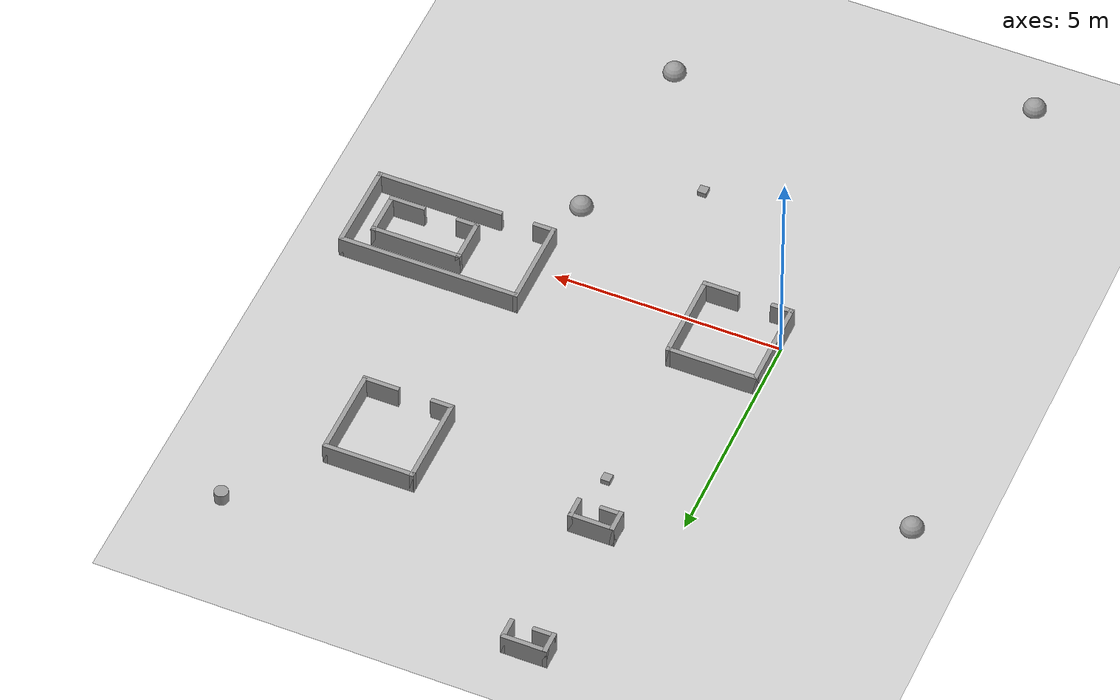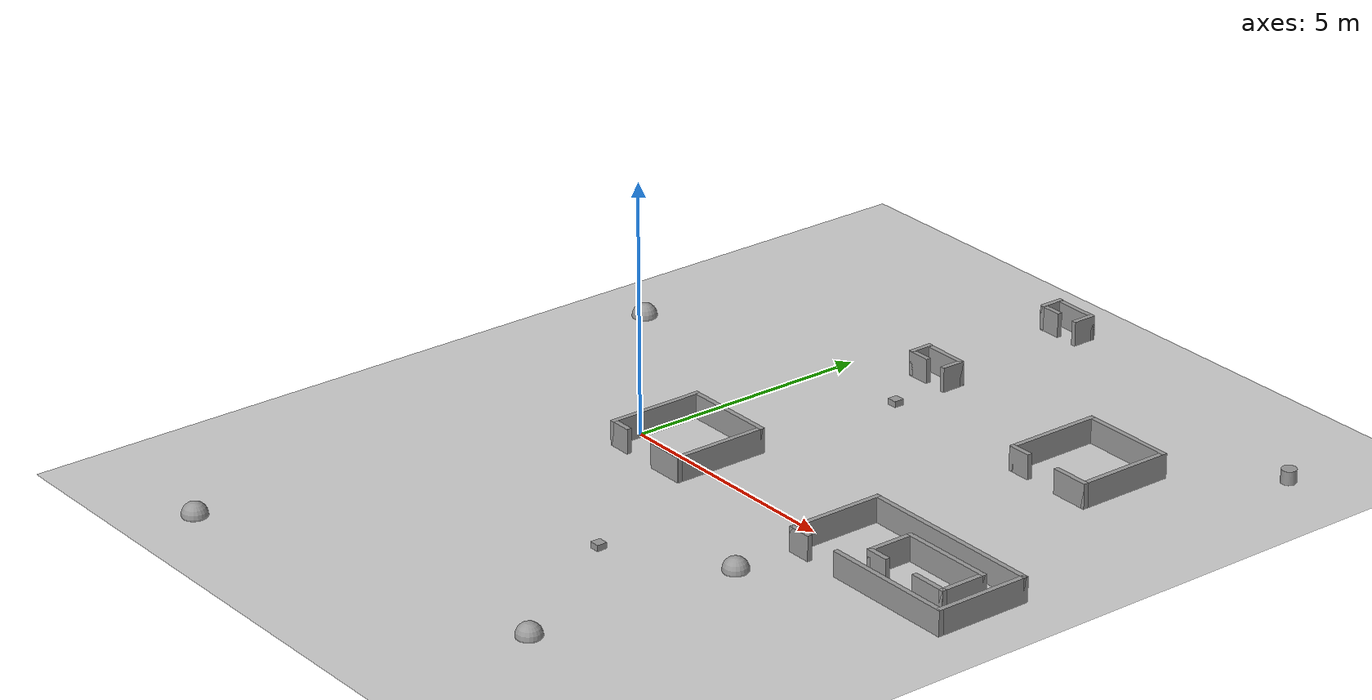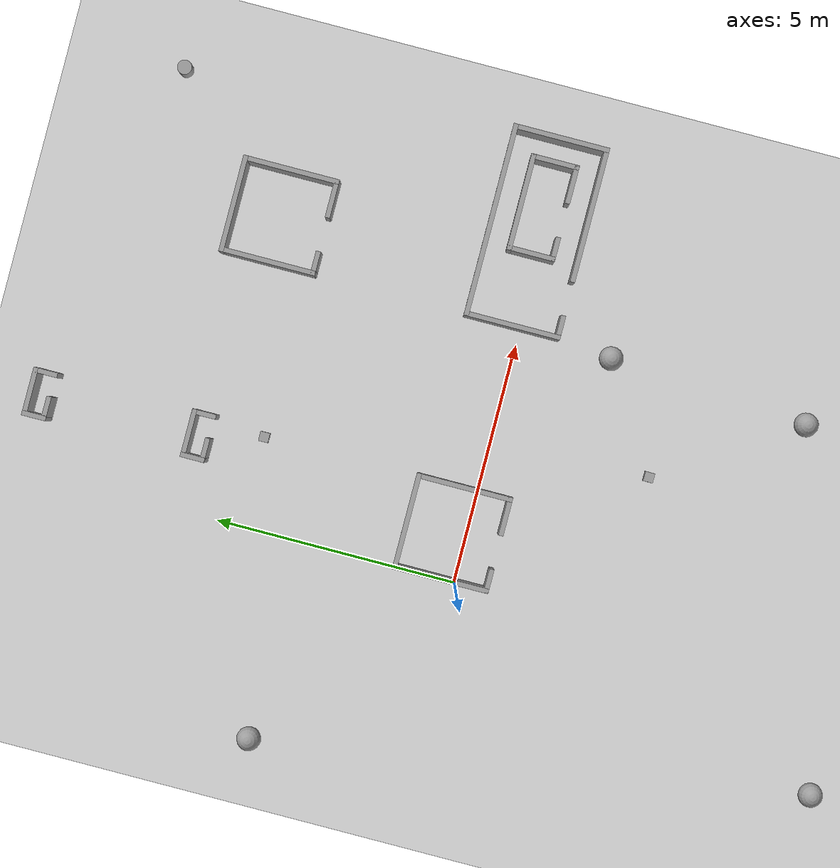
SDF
<sdf version="1.6">
 <world name="default">
  <model name="ground_plane">
   <static>1</static>
   <link name="link">
    <collision name="collision">
     <geometry><plane><normal>0 0 1</normal><size>20 20</size></plane></geometry>
     <surface>
      <contact><collide_bitmask>65535</collide_bitmask></contact>
      <friction><ode><mu>100</mu><mu2>50</mu2></ode></friction>
     </surface>
    </collision>
    <visual name="visual">
     <cast_shadows>0</cast_shadows>
     <geometry><plane><normal>0 0 1</normal><size>20 20</size></plane></geometry>
     <material>
      <script><uri>file://media/materials/scripts/gazebo.material</uri><name>Gazebo/Grey</name></script>
     </material>
    </visual>
   </link>
  </model>
  <model name="shape2">
   <pose>7.3 0.2 0 0 -0 0</pose>
   <link name="Wall_0">
    <collision name="Wall_0_Collision">
     <geometry><box><size>3.98685 0.1 0.5</size></box></geometry>
     <pose>0 0 0.25 0 -0 0</pose>
    </collision>
    <visual name="Wall_0_Visual">
     <pose>0 0 0.25 0 -0 0</pose>
     <geometry><box><size>3.98685 0.1 0.5</size></box></geometry>
     <material>
      <script><uri>file://media/materials/scripts/gazebo.material</uri><name>Gazebo/Grey</name></script>
      <ambient>1 1 1 1</ambient>
     </material>
     <meta><layer>0</layer></meta>
    </visual>
    <pose>0.003288 0.95 0 0 -0 0</pose>
   </link>
   <link name="Wall_1">
    <collision name="Wall_1_Collision">
     <geometry><box><size>2 0.1 0.5</size></box></geometry>
     <pose>0 0 0.25 0 -0 0</pose>
    </collision>
    <visual name="Wall_1_Visual">
     <pose>0 0 0.25 0 -0 0</pose>
     <geometry><box><size>2 0.1 0.5</size></box></geometry>
     <material>
      <script><uri>file://media/materials/scripts/gazebo.material</uri><name>Gazebo/Grey</name></script>
      <ambient>1 1 1 1</ambient>
     </material>
     <meta><layer>0</layer></meta>
    </visual>
    <pose>1.94671 0 0 0 -0 -1.5708</pose>
   </link>
   <link name="Wall_2">
    <collision name="Wall_2_Collision">
     <geometry><box><size>2.8 0.1 0.5</size></box></geometry>
     <pose>0 0 0.25 0 -0 0</pose>
    </collision>
    <visual name="Wall_2_Visual">
     <pose>0 0 0.25 0 -0 0</pose>
     <geometry><box><size>2.8 0.1 0.5</size></box></geometry>
     <material>
      <script><uri>file://media/materials/scripts/gazebo.material</uri><name>Gazebo/Grey</name></script>
      <ambient>1 1 1 1</ambient>
     </material>
     <meta><layer>0</layer></meta>
    </visual>
    <pose>0.596712 -0.95 0 0 -0 3.14159</pose>
   </link>
   <link name="Wall_4">
    <collision name="Wall_4_Collision">
     <geometry><box><size>2 0.1 0.5</size></box></geometry>
     <pose>0 0 0.25 0 -0 0</pose>
    </collision>
    <visual name="Wall_4_Visual">
     <pose>0 0 0.25 0 -0 0</pose>
     <geometry><box><size>2 0.1 0.5</size></box></geometry>
     <material>
      <script><uri>file://media/materials/scripts/gazebo.material</uri><name>Gazebo/Grey</name></script>
      <ambient>1 1 1 1</ambient>
     </material>
     <meta><layer>0</layer></meta>
    </visual>
    <pose>-1.94671 0 0 0 -0 -1.5708</pose>
   </link>
   <link name="Wall_5">
    <collision name="Wall_5_Collision">
     <geometry><box><size>0.5 0.1 0.5</size></box></geometry>
     <pose>0 0 0.25 0 -0 0</pose>
    </collision>
    <visual name="Wall_5_Visual">
     <pose>0 0 0.25 0 -0 0</pose>
     <geometry><box><size>0.5 0.1 0.5</size></box></geometry>
     <material>
      <script><uri>file://media/materials/scripts/gazebo.material</uri><name>Gazebo/Grey</name></script>
      <ambient>1 1 1 1</ambient>
     </material>
     <meta><layer>0</layer></meta>
    </visual>
    <pose>-1.74671 -0.95 0 0 -0 0</pose>
   </link>
   <static>1</static>
  </model>
  <model name="shape1">
   <pose>7.8 0.2 0 0 -0 0</pose>
   <link name="Wall_0">
    <collision name="Wall_0_Collision">
     <geometry><box><size>2 0.1 0.5</size></box></geometry>
     <pose>0 0 0.25 0 -0 0</pose>
    </collision>
    <visual name="Wall_0_Visual">
     <pose>0 0 0.25 0 -0 0</pose>
     <geometry><box><size>2 0.1 0.5</size></box></geometry>
     <material>
      <script><uri>file://media/materials/scripts/gazebo.material</uri><name>Gazebo/Grey</name></script>
      <ambient>1 1 1 1</ambient>
     </material>
     <meta><layer>0</layer></meta>
    </visual>
    <pose>0 0.45 0 0 -0 0</pose>
   </link>
   <link name="Wall_1">
    <collision name="Wall_1_Collision">
     <geometry><box><size>1 0.1 0.5</size></box></geometry>
     <pose>0 0 0.25 0 -0 0</pose>
    </collision>
    <visual name="Wall_1_Visual">
     <pose>0 0 0.25 0 -0 0</pose>
     <geometry><box><size>1 0.1 0.5</size></box></geometry>
     <material>
      <script><uri>file://media/materials/scripts/gazebo.material</uri><name>Gazebo/Grey</name></script>
      <ambient>1 1 1 1</ambient>
     </material>
     <meta><layer>0</layer></meta>
    </visual>
    <pose>0.95 -0 0 0 -0 -1.5708</pose>
   </link>
   <link name="Wall_2">
    <collision name="Wall_2_Collision">
     <geometry><box><size>0.8 0.1 0.5</size></box></geometry>
     <pose>0 0 0.25 0 -0 0</pose>
    </collision>
    <visual name="Wall_2_Visual">
     <pose>0 0 0.25 0 -0 0</pose>
     <geometry><box><size>0.8 0.1 0.5</size></box></geometry>
     <material>
      <script><uri>file://media/materials/scripts/gazebo.material</uri><name>Gazebo/Grey</name></script>
      <ambient>1 1 1 1</ambient>
     </material>
     <meta><layer>0</layer></meta>
    </visual>
    <pose>0.6 -0.45 0 0 -0 3.14159</pose>
   </link>
   <link name="Wall_4">
    <collision name="Wall_4_Collision">
     <geometry><box><size>1 0.1 0.5</size></box></geometry>
     <pose>0 0 0.25 0 -0 0</pose>
    </collision>
    <visual name="Wall_4_Visual">
     <pose>0 0 0.25 0 -0 0</pose>
     <geometry><box><size>1 0.1 0.5</size></box></geometry>
     <material>
      <script><uri>file://media/materials/scripts/gazebo.material</uri><name>Gazebo/Grey</name></script>
      <ambient>1 1 1 1</ambient>
     </material>
     <meta><layer>0</layer></meta>
    </visual>
    <pose>-0.95 -0 0 0 -0 -1.5708</pose>
   </link>
   <link name="Wall_5">
    <collision name="Wall_5_Collision">
     <geometry><box><size>0.499474 0.1 0.5</size></box></geometry>
     <pose>0 0 0.25 0 -0 0</pose>
    </collision>
    <visual name="Wall_5_Visual">
     <pose>0 0 0.25 0 -0 0</pose>
     <geometry><box><size>0.499474 0.1 0.5</size></box></geometry>
     <material>
      <script><uri>file://media/materials/scripts/gazebo.material</uri><name>Gazebo/Grey</name></script>
      <ambient>1 1 1 1</ambient>
     </material>
     <meta><layer>0</layer></meta>
    </visual>
    <pose>-0.75 -0.45 0 0 -0 0</pose>
   </link>
   <static>1</static>
  </model>
  <model name="shape5">
   <pose>1 0.3 0 0 -0 0</pose>
   <link name="Wall_20">
    <collision name="Wall_20_Collision">
     <geometry><box><size>2 0.1 0.5</size></box></geometry>
     <pose>0 0 0.25 0 -0 0</pose>
    </collision>
    <visual name="Wall_20_Visual">
     <pose>0 0 0.25 0 -0 0</pose>
     <geometry><box><size>2 0.1 0.5</size></box></geometry>
     <material>
      <script><uri>file://media/materials/scripts/gazebo.material</uri><name>Gazebo/Grey</name></script>
      <ambient>1 1 1 1</ambient>
     </material>
     <meta><layer>0</layer></meta>
    </visual>
    <pose>-0 0.95 0 0 -0 0</pose>
   </link>
   <link name="Wall_21">
    <collision name="Wall_21_Collision">
     <geometry><box><size>2 0.1 0.5</size></box></geometry>
     <pose>0 0 0.25 0 -0 0</pose>
    </collision>
    <visual name="Wall_21_Visual">
     <pose>0 0 0.25 0 -0 0</pose>
     <geometry><box><size>2 0.1 0.5</size></box></geometry>
     <material>
      <script><uri>file://media/materials/scripts/gazebo.material</uri><name>Gazebo/Grey</name></script>
      <ambient>1 1 1 1</ambient>
     </material>
     <meta><layer>0</layer></meta>
    </visual>
    <pose>0.95 0 0 0 -0 -1.5708</pose>
   </link>
   <link name="Wall_22">
    <collision name="Wall_22_Collision">
     <geometry><box><size>0.8 0.1 0.5</size></box></geometry>
     <pose>0 0 0.25 0 -0 0</pose>
    </collision>
    <visual name="Wall_22_Visual">
     <pose>0 0 0.25 0 -0 0</pose>
     <geometry><box><size>0.8 0.1 0.5</size></box></geometry>
     <material>
      <script><uri>file://media/materials/scripts/gazebo.material</uri><name>Gazebo/Grey</name></script>
      <ambient>1 1 1 1</ambient>
     </material>
     <meta><layer>0</layer></meta>
    </visual>
    <pose>0.6 -0.95 0 0 -0 3.14159</pose>
   </link>
   <link name="Wall_24">
    <collision name="Wall_24_Collision">
     <geometry><box><size>2 0.1 0.5</size></box></geometry>
     <pose>0 0 0.25 0 -0 0</pose>
    </collision>
    <visual name="Wall_24_Visual">
     <pose>0 0 0.25 0 -0 0</pose>
     <geometry><box><size>2 0.1 0.5</size></box></geometry>
     <material>
      <script><uri>file://media/materials/scripts/gazebo.material</uri><name>Gazebo/Grey</name></script>
      <ambient>1 1 1 1</ambient>
     </material>
     <meta><layer>0</layer></meta>
    </visual>
    <pose>-0.95 0 0 0 -0 -1.5708</pose>
   </link>
   <link name="Wall_25">
    <collision name="Wall_25_Collision">
     <geometry><box><size>0.5 0.1 0.5</size></box></geometry>
     <pose>0 0 0.25 0 -0 0</pose>
    </collision>
    <visual name="Wall_25_Visual">
     <pose>0 0 0.25 0 -0 0</pose>
     <geometry><box><size>0.5 0.1 0.5</size></box></geometry>
     <material>
      <script><uri>file://media/materials/scripts/gazebo.material</uri><name>Gazebo/Grey</name></script>
      <ambient>1 1 1 1</ambient>
     </material>
     <meta><layer>0</layer></meta>
    </visual>
    <pose>-0.75 -0.95 0 0 -0 0</pose>
   </link>
   <static>1</static>
  </model>
  <model name="shape0">
   <pose>1.6 9.05 0 0 -0 0</pose>
   <link name="Wall_0">
    <pose>0 0.2 0 0 -0 0</pose>
    <inertial>
     <mass>1</mass>
     <inertia><ixx>1</ixx><ixy>0</ixy><ixz>0</ixz><iyy>1</iyy><iyz>0</iyz><izz>1</izz></inertia>
    </inertial>
    <visual name="Wall_0_Visual">
     <pose>0 0 0.25 0 -0 0</pose>
     <geometry><box><size>1 0.1 0.5</size></box></geometry>
     <material>
      <script><uri>file://media/materials/scripts/gazebo.material</uri><name>Gazebo/Grey</name></script>
      <ambient>1 1 1 1</ambient>
      <shader type="vertex"><normal_map>__default__</normal_map></shader>
      <diffuse>0.7 0.7 0.7 1</diffuse>
      <specular>0.01 0.01 0.01 1</specular>
      <emissive>0 0 0 1</emissive>
     </material>
     <meta><layer>0</layer></meta>
    </visual>
    <collision name="Wall_0_Collision">
     <pose>0 0 0.25 0 -0 0</pose>
     <geometry><box><size>1 0.1 0.5</size></box></geometry>
     <surface>
      <friction>
       <ode><mu>1</mu><mu2>1</mu2><fdir1>0 0 0</fdir1><slip1>0</slip1><slip2>0</slip2></ode>
       <torsional>
        <coefficient>1</coefficient>
        <patch_radius>0</patch_radius>
        <surface_radius>0</surface_radius>
        <use_patch_radius>1</use_patch_radius>
        <ode><slip>0</slip></ode>
       </torsional>
      </friction>
      <bounce><restitution_coefficient>0</restitution_coefficient><threshold>1e+06</threshold></bounce>
      <contact>
       <collide_without_contact>0</collide_without_contact>
       <collide_without_contact_bitmask>1</collide_without_contact_bitmask>
       <collide_bitmask>1</collide_bitmask>
       <ode>
        <soft_cfm>0</soft_cfm>
        <soft_erp>0.2</soft_erp>
        <kp>1e+13</kp>
        <kd>1</kd>
        <max_vel>0.01</max_vel>
        <min_depth>0</min_depth>
       </ode>
       <bullet>
        <split_impulse>1</split_impulse>
        <split_impulse_penetration_threshold>-0.01</split_impulse_penetration_threshold>
        <soft_cfm>0</soft_cfm>
        <soft_erp>0.2</soft_erp>
        <kp>1e+13</kp>
        <kd>1</kd>
       </bullet>
      </contact>
     </surface>
    </collision>
   </link>
   <link name="Wall_2">
    <pose>-0.45 0 0.01 0 0 -1.5708</pose>
    <inertial>
     <mass>1</mass>
     <inertia><ixx>1</ixx><ixy>0</ixy><ixz>0</ixz><iyy>1</iyy><iyz>0</iyz><izz>1</izz></inertia>
    </inertial>
    <visual name="Wall_2_Visual">
     <pose>0 0 0.25 0 -0 0</pose>
     <geometry><box><size>0.5 0.1 0.5</size></box></geometry>
     <material>
      <script><uri>file://media/materials/scripts/gazebo.material</uri><name>Gazebo/Grey</name></script>
      <ambient>1 1 1 1</ambient>
      <shader type="vertex"><normal_map>__default__</normal_map></shader>
      <diffuse>0.7 0.7 0.7 1</diffuse>
      <specular>0.01 0.01 0.01 1</specular>
      <emissive>0 0 0 1</emissive>
     </material>
     <meta><layer>0</layer></meta>
    </visual>
    <collision name="Wall_2_Collision">
     <pose>0 0 0.25 0 -0 0</pose>
     <geometry><box><size>0.5 0.1 0.5</size></box></geometry>
     <surface>
      <friction>
       <ode><mu>1</mu><mu2>1</mu2><fdir1>0 0 0</fdir1><slip1>0</slip1><slip2>0</slip2></ode>
       <torsional>
        <coefficient>1</coefficient>
        <patch_radius>0</patch_radius>
        <surface_radius>0</surface_radius>
        <use_patch_radius>1</use_patch_radius>
        <ode><slip>0</slip></ode>
       </torsional>
      </friction>
      <bounce><restitution_coefficient>0</restitution_coefficient><threshold>1e+06</threshold></bounce>
      <contact>
       <collide_without_contact>0</collide_without_contact>
       <collide_without_contact_bitmask>1</collide_without_contact_bitmask>
       <collide_bitmask>1</collide_bitmask>
       <ode>
        <soft_cfm>0</soft_cfm>
        <soft_erp>0.2</soft_erp>
        <kp>1e+13</kp>
        <kd>1</kd>
        <max_vel>0.01</max_vel>
        <min_depth>0</min_depth>
       </ode>
       <bullet>
        <split_impulse>1</split_impulse>
        <split_impulse_penetration_threshold>-0.01</split_impulse_penetration_threshold>
        <soft_cfm>0</soft_cfm>
        <soft_erp>0.2</soft_erp>
        <kp>1e+13</kp>
        <kd>1</kd>
       </bullet>
      </contact>
     </surface>
    </collision>
   </link>
   <link name="Wall_4">
    <pose>0.45 0 0 0 0 -1.5708</pose>
    <inertial>
     <mass>1</mass>
     <inertia><ixx>1</ixx><ixy>0</ixy><ixz>0</ixz><iyy>1</iyy><iyz>0</iyz><izz>1</izz></inertia>
    </inertial>
    <visual name="Wall_4_Visual">
     <pose>0 0 0.25 0 -0 0</pose>
     <geometry><box><size>0.5 0.1 0.5</size></box></geometry>
     <material>
      <script><uri>file://media/materials/scripts/gazebo.material</uri><name>Gazebo/Grey</name></script>
      <ambient>1 1 1 1</ambient>
      <shader type="vertex"><normal_map>__default__</normal_map></shader>
      <diffuse>0.7 0.7 0.7 1</diffuse>
      <specular>0.01 0.01 0.01 1</specular>
      <emissive>0 0 0 1</emissive>
     </material>
     <meta><layer>0</layer></meta>
    </visual>
    <collision name="Wall_4_Collision">
     <pose>0 0 0.25 0 -0 0</pose>
     <geometry><box><size>0.5 0.1 0.5</size></box></geometry>
     <surface>
      <friction>
       <ode><mu>1</mu><mu2>1</mu2><fdir1>0 0 0</fdir1><slip1>0</slip1><slip2>0</slip2></ode>
       <torsional>
        <coefficient>1</coefficient>
        <patch_radius>0</patch_radius>
        <surface_radius>0</surface_radius>
        <use_patch_radius>1</use_patch_radius>
        <ode><slip>0</slip></ode>
       </torsional>
      </friction>
      <bounce><restitution_coefficient>0</restitution_coefficient><threshold>1e+06</threshold></bounce>
      <contact>
       <collide_without_contact>0</collide_without_contact>
       <collide_without_contact_bitmask>1</collide_without_contact_bitmask>
       <collide_bitmask>1</collide_bitmask>
       <ode>
        <soft_cfm>0</soft_cfm>
        <soft_erp>0.2</soft_erp>
        <kp>1e+13</kp>
        <kd>1</kd>
        <max_vel>0.01</max_vel>
        <min_depth>0</min_depth>
       </ode>
       <bullet>
        <split_impulse>1</split_impulse>
        <split_impulse_penetration_threshold>-0.01</split_impulse_penetration_threshold>
        <soft_cfm>0</soft_cfm>
        <soft_erp>0.2</soft_erp>
        <kp>1e+13</kp>
        <kd>1</kd>
       </bullet>
      </contact>
     </surface>
    </collision>
   </link>
   <link name="Wall_7">
    <pose>-0.25 -0.2 0 0 -0 0</pose>
    <inertial>
     <mass>1</mass>
     <inertia><ixx>1</ixx><ixy>0</ixy><ixz>0</ixz><iyy>1</iyy><iyz>0</iyz><izz>1</izz></inertia>
    </inertial>
    <visual name="Wall_7_Visual">
     <pose>0 0 0.25 0 -0 0</pose>
     <geometry><box><size>0.5 0.1 0.5</size></box></geometry>
     <material>
      <script><uri>file://media/materials/scripts/gazebo.material</uri><name>Gazebo/Grey</name></script>
      <ambient>1 1 1 1</ambient>
      <shader type="vertex"><normal_map>__default__</normal_map></shader>
      <diffuse>0.7 0.7 0.7 1</diffuse>
      <specular>0.01 0.01 0.01 1</specular>
      <emissive>0 0 0 1</emissive>
     </material>
     <meta><layer>0</layer></meta>
    </visual>
    <collision name="Wall_7_Collision">
     <pose>0 0 0.25 0 -0 0</pose>
     <geometry><box><size>0.5 0.1 0.5</size></box></geometry>
     <surface>
      <friction>
       <ode><mu>1</mu><mu2>1</mu2><fdir1>0 0 0</fdir1><slip1>0</slip1><slip2>0</slip2></ode>
       <torsional>
        <coefficient>1</coefficient>
        <patch_radius>0</patch_radius>
        <surface_radius>0</surface_radius>
        <use_patch_radius>1</use_patch_radius>
        <ode><slip>0</slip></ode>
       </torsional>
      </friction>
      <bounce><restitution_coefficient>0</restitution_coefficient><threshold>1e+06</threshold></bounce>
      <contact>
       <collide_without_contact>0</collide_without_contact>
       <collide_without_contact_bitmask>1</collide_without_contact_bitmask>
       <collide_bitmask>1</collide_bitmask>
       <ode>
        <soft_cfm>0</soft_cfm>
        <soft_erp>0.2</soft_erp>
        <kp>1e+13</kp>
        <kd>1</kd>
        <max_vel>0.01</max_vel>
        <min_depth>0</min_depth>
       </ode>
       <bullet>
        <split_impulse>1</split_impulse>
        <split_impulse_penetration_threshold>-0.01</split_impulse_penetration_threshold>
        <soft_cfm>0</soft_cfm>
        <soft_erp>0.2</soft_erp>
        <kp>1e+13</kp>
        <kd>1</kd>
       </bullet>
      </contact>
     </surface>
    </collision>
   </link>
   <static>1</static>
  </model>
  <model name="shape0">
   <pose>1.6 5.75 0 0 -0 0</pose>
   <link name="Wall_0">
    <pose>0 0.2 0 0 -0 0</pose>
    <inertial>
     <mass>1</mass>
     <inertia><ixx>1</ixx><ixy>0</ixy><ixz>0</ixz><iyy>1</iyy><iyz>0</iyz><izz>1</izz></inertia>
    </inertial>
    <visual name="Wall_0_Visual">
     <pose>0 0 0.25 0 -0 0</pose>
     <geometry><box><size>1 0.1 0.5</size></box></geometry>
     <material>
      <script><uri>file://media/materials/scripts/gazebo.material</uri><name>Gazebo/Grey</name></script>
      <ambient>1 1 1 1</ambient>
      <shader type="vertex"><normal_map>__default__</normal_map></shader>
      <diffuse>0.7 0.7 0.7 1</diffuse>
      <specular>0.01 0.01 0.01 1</specular>
      <emissive>0 0 0 1</emissive>
     </material>
     <meta><layer>0</layer></meta>
    </visual>
    <collision name="Wall_0_Collision">
     <pose>0 0 0.25 0 -0 0</pose>
     <geometry><box><size>1 0.1 0.5</size></box></geometry>
     <surface>
      <friction>
       <ode><mu>1</mu><mu2>1</mu2><fdir1>0 0 0</fdir1><slip1>0</slip1><slip2>0</slip2></ode>
       <torsional>
        <coefficient>1</coefficient>
        <patch_radius>0</patch_radius>
        <surface_radius>0</surface_radius>
        <use_patch_radius>1</use_patch_radius>
        <ode><slip>0</slip></ode>
       </torsional>
      </friction>
      <bounce><restitution_coefficient>0</restitution_coefficient><threshold>1e+06</threshold></bounce>
      <contact>
       <collide_without_contact>0</collide_without_contact>
       <collide_without_contact_bitmask>1</collide_without_contact_bitmask>
       <collide_bitmask>1</collide_bitmask>
       <ode>
        <soft_cfm>0</soft_cfm>
        <soft_erp>0.2</soft_erp>
        <kp>1e+13</kp>
        <kd>1</kd>
        <max_vel>0.01</max_vel>
        <min_depth>0</min_depth>
       </ode>
       <bullet>
        <split_impulse>1</split_impulse>
        <split_impulse_penetration_threshold>-0.01</split_impulse_penetration_threshold>
        <soft_cfm>0</soft_cfm>
        <soft_erp>0.2</soft_erp>
        <kp>1e+13</kp>
        <kd>1</kd>
       </bullet>
      </contact>
     </surface>
    </collision>
   </link>
   <link name="Wall_2">
    <pose>-0.45 0 0.01 0 0 -1.5708</pose>
    <inertial>
     <mass>1</mass>
     <inertia><ixx>1</ixx><ixy>0</ixy><ixz>0</ixz><iyy>1</iyy><iyz>0</iyz><izz>1</izz></inertia>
    </inertial>
    <visual name="Wall_2_Visual">
     <pose>0 0 0.25 0 -0 0</pose>
     <geometry><box><size>0.5 0.1 0.5</size></box></geometry>
     <material>
      <script><uri>file://media/materials/scripts/gazebo.material</uri><name>Gazebo/Grey</name></script>
      <ambient>1 1 1 1</ambient>
      <shader type="vertex"><normal_map>__default__</normal_map></shader>
      <diffuse>0.7 0.7 0.7 1</diffuse>
      <specular>0.01 0.01 0.01 1</specular>
      <emissive>0 0 0 1</emissive>
     </material>
     <meta><layer>0</layer></meta>
    </visual>
    <collision name="Wall_2_Collision">
     <pose>0 0 0.25 0 -0 0</pose>
     <geometry><box><size>0.5 0.1 0.5</size></box></geometry>
     <surface>
      <friction>
       <ode><mu>1</mu><mu2>1</mu2><fdir1>0 0 0</fdir1><slip1>0</slip1><slip2>0</slip2></ode>
       <torsional>
        <coefficient>1</coefficient>
        <patch_radius>0</patch_radius>
        <surface_radius>0</surface_radius>
        <use_patch_radius>1</use_patch_radius>
        <ode><slip>0</slip></ode>
       </torsional>
      </friction>
      <bounce><restitution_coefficient>0</restitution_coefficient><threshold>1e+06</threshold></bounce>
      <contact>
       <collide_without_contact>0</collide_without_contact>
       <collide_without_contact_bitmask>1</collide_without_contact_bitmask>
       <collide_bitmask>1</collide_bitmask>
       <ode>
        <soft_cfm>0</soft_cfm>
        <soft_erp>0.2</soft_erp>
        <kp>1e+13</kp>
        <kd>1</kd>
        <max_vel>0.01</max_vel>
        <min_depth>0</min_depth>
       </ode>
       <bullet>
        <split_impulse>1</split_impulse>
        <split_impulse_penetration_threshold>-0.01</split_impulse_penetration_threshold>
        <soft_cfm>0</soft_cfm>
        <soft_erp>0.2</soft_erp>
        <kp>1e+13</kp>
        <kd>1</kd>
       </bullet>
      </contact>
     </surface>
    </collision>
   </link>
   <link name="Wall_4">
    <pose>0.45 0 0 0 0 -1.5708</pose>
    <inertial>
     <mass>1</mass>
     <inertia><ixx>1</ixx><ixy>0</ixy><ixz>0</ixz><iyy>1</iyy><iyz>0</iyz><izz>1</izz></inertia>
    </inertial>
    <visual name="Wall_4_Visual">
     <pose>0 0 0.25 0 -0 0</pose>
     <geometry><box><size>0.5 0.1 0.5</size></box></geometry>
     <material>
      <script><uri>file://media/materials/scripts/gazebo.material</uri><name>Gazebo/Grey</name></script>
      <ambient>1 1 1 1</ambient>
      <shader type="vertex"><normal_map>__default__</normal_map></shader>
      <diffuse>0.7 0.7 0.7 1</diffuse>
      <specular>0.01 0.01 0.01 1</specular>
      <emissive>0 0 0 1</emissive>
     </material>
     <meta><layer>0</layer></meta>
    </visual>
    <collision name="Wall_4_Collision">
     <pose>0 0 0.25 0 -0 0</pose>
     <geometry><box><size>0.5 0.1 0.5</size></box></geometry>
     <surface>
      <friction>
       <ode><mu>1</mu><mu2>1</mu2><fdir1>0 0 0</fdir1><slip1>0</slip1><slip2>0</slip2></ode>
       <torsional>
        <coefficient>1</coefficient>
        <patch_radius>0</patch_radius>
        <surface_radius>0</surface_radius>
        <use_patch_radius>1</use_patch_radius>
        <ode><slip>0</slip></ode>
       </torsional>
      </friction>
      <bounce><restitution_coefficient>0</restitution_coefficient><threshold>1e+06</threshold></bounce>
      <contact>
       <collide_without_contact>0</collide_without_contact>
       <collide_without_contact_bitmask>1</collide_without_contact_bitmask>
       <collide_bitmask>1</collide_bitmask>
       <ode>
        <soft_cfm>0</soft_cfm>
        <soft_erp>0.2</soft_erp>
        <kp>1e+13</kp>
        <kd>1</kd>
        <max_vel>0.01</max_vel>
        <min_depth>0</min_depth>
       </ode>
       <bullet>
        <split_impulse>1</split_impulse>
        <split_impulse_penetration_threshold>-0.01</split_impulse_penetration_threshold>
        <soft_cfm>0</soft_cfm>
        <soft_erp>0.2</soft_erp>
        <kp>1e+13</kp>
        <kd>1</kd>
       </bullet>
      </contact>
     </surface>
    </collision>
   </link>
   <link name="Wall_7">
    <pose>-0.25 -0.2 0 0 -0 0</pose>
    <inertial>
     <mass>1</mass>
     <inertia><ixx>1</ixx><ixy>0</ixy><ixz>0</ixz><iyy>1</iyy><iyz>0</iyz><izz>1</izz></inertia>
    </inertial>
    <visual name="Wall_7_Visual">
     <pose>0 0 0.25 0 -0 0</pose>
     <geometry><box><size>0.5 0.1 0.5</size></box></geometry>
     <material>
      <script><uri>file://media/materials/scripts/gazebo.material</uri><name>Gazebo/Grey</name></script>
      <ambient>1 1 1 1</ambient>
      <shader type="vertex"><normal_map>__default__</normal_map></shader>
      <diffuse>0.7 0.7 0.7 1</diffuse>
      <specular>0.01 0.01 0.01 1</specular>
      <emissive>0 0 0 1</emissive>
     </material>
     <meta><layer>0</layer></meta>
    </visual>
    <collision name="Wall_7_Collision">
     <pose>0 0 0.25 0 -0 0</pose>
     <geometry><box><size>0.5 0.1 0.5</size></box></geometry>
     <surface>
      <friction>
       <ode><mu>1</mu><mu2>1</mu2><fdir1>0 0 0</fdir1><slip1>0</slip1><slip2>0</slip2></ode>
       <torsional>
        <coefficient>1</coefficient>
        <patch_radius>0</patch_radius>
        <surface_radius>0</surface_radius>
        <use_patch_radius>1</use_patch_radius>
        <ode><slip>0</slip></ode>
       </torsional>
      </friction>
      <bounce><restitution_coefficient>0</restitution_coefficient><threshold>1e+06</threshold></bounce>
      <contact>
       <collide_without_contact>0</collide_without_contact>
       <collide_without_contact_bitmask>1</collide_without_contact_bitmask>
       <collide_bitmask>1</collide_bitmask>
       <ode>
        <soft_cfm>0</soft_cfm>
        <soft_erp>0.2</soft_erp>
        <kp>1e+13</kp>
        <kd>1</kd>
        <max_vel>0.01</max_vel>
        <min_depth>0</min_depth>
       </ode>
       <bullet>
        <split_impulse>1</split_impulse>
        <split_impulse_penetration_threshold>-0.01</split_impulse_penetration_threshold>
        <soft_cfm>0</soft_cfm>
        <soft_erp>0.2</soft_erp>
        <kp>1e+13</kp>
        <kd>1</kd>
       </bullet>
      </contact>
     </surface>
    </collision>
   </link>
   <static>1</static>
  </model>
  <model name="box_d=20">
   <link name="link_2">
    <inertial>
     <mass>1</mass>
     <inertia>
      <ixx>0.166667</ixx>
      <ixy>0</ixy>
      <ixz>0</ixz>
      <iyy>0.166667</iyy>
      <iyz>0</iyz>
      <izz>0.166667</izz>
     </inertia>
    </inertial>
    <pose>3.1 -3.3 0 0 -0 0</pose>
    <visual name="visual">
     <geometry><box><size>0.2 0.2 0.2</size></box></geometry>
     <material>
      <lighting>1</lighting>
      <script><uri>file://media/materials/scripts/gazebo.material</uri><name>Gazebo/Grey</name></script>
      <shader type="vertex"><normal_map>__default__</normal_map></shader>
      <ambient>0.3 0.3 0.3 1</ambient>
      <diffuse>0.7 0.7 0.7 1</diffuse>
      <specular>0.01 0.01 0.01 1</specular>
      <emissive>0 0 0 1</emissive>
     </material>
    </visual>
    <collision name="collision">
     <geometry><box><size>0.2 0.2 0.2</size></box></geometry>
     <surface>
      <friction>
       <ode><mu>1</mu><mu2>1</mu2><fdir1>0 0 0</fdir1><slip1>0</slip1><slip2>0</slip2></ode>
       <torsional>
        <coefficient>1</coefficient>
        <patch_radius>0</patch_radius>
        <surface_radius>0</surface_radius>
        <use_patch_radius>1</use_patch_radius>
        <ode><slip>0</slip></ode>
       </torsional>
      </friction>
      <bounce><restitution_coefficient>0</restitution_coefficient><threshold>1e+06</threshold></bounce>
      <contact>
       <collide_without_contact>0</collide_without_contact>
       <collide_without_contact_bitmask>1</collide_without_contact_bitmask>
       <collide_bitmask>1</collide_bitmask>
       <ode>
        <soft_cfm>0</soft_cfm>
        <soft_erp>0.2</soft_erp>
        <kp>1e+13</kp>
        <kd>1</kd>
        <max_vel>0.01</max_vel>
        <min_depth>0</min_depth>
       </ode>
       <bullet>
        <split_impulse>1</split_impulse>
        <split_impulse_penetration_threshold>-0.01</split_impulse_penetration_threshold>
        <soft_cfm>0</soft_cfm>
        <soft_erp>0.2</soft_erp>
        <kp>1e+13</kp>
        <kd>1</kd>
       </bullet>
      </contact>
     </surface>
    </collision>
   </link>
   <static>0</static>
  </model>
  <model name="ball_d=50">
   <link name="link_1">
    <inertial>
     <mass>1</mass>
     <inertia><ixx>0.1</ixx><ixy>0</ixy><ixz>0</ixz><iyy>0.1</iyy><iyz>0</iyz><izz>0.1</izz></inertia>
    </inertial>
    <pose>5.25 -1.95 0 0 -0 0</pose>
    <visual name="visual">
     <geometry><sphere><radius>0.25</radius></sphere></geometry>
     <material>
      <lighting>1</lighting>
      <script><uri>file://media/materials/scripts/gazebo.material</uri><name>Gazebo/Grey</name></script>
      <shader type="vertex"><normal_map>__default__</normal_map></shader>
      <ambient>0.3 0.3 0.3 1</ambient>
      <diffuse>0.7 0.7 0.7 1</diffuse>
      <specular>0.01 0.01 0.01 1</specular>
      <emissive>0 0 0 1</emissive>
     </material>
    </visual>
    <collision name="collision">
     <geometry><sphere><radius>0.25</radius></sphere></geometry>
     <surface>
      <friction>
       <ode><mu>1</mu><mu2>1</mu2><fdir1>0 0 0</fdir1><slip1>0</slip1><slip2>0</slip2></ode>
       <torsional>
        <coefficient>1</coefficient>
        <patch_radius>0</patch_radius>
        <surface_radius>0</surface_radius>
        <use_patch_radius>1</use_patch_radius>
        <ode><slip>0</slip></ode>
       </torsional>
      </friction>
      <bounce><restitution_coefficient>0</restitution_coefficient><threshold>1e+06</threshold></bounce>
      <contact>
       <collide_without_contact>0</collide_without_contact>
       <collide_without_contact_bitmask>1</collide_without_contact_bitmask>
       <collide_bitmask>1</collide_bitmask>
       <ode>
        <soft_cfm>0</soft_cfm>
        <soft_erp>0.2</soft_erp>
        <kp>1e+13</kp>
        <kd>1</kd>
        <max_vel>0.01</max_vel>
        <min_depth>0</min_depth>
       </ode>
       <bullet>
        <split_impulse>1</split_impulse>
        <split_impulse_penetration_threshold>-0.01</split_impulse_penetration_threshold>
        <soft_cfm>0</soft_cfm>
        <soft_erp>0.2</soft_erp>
        <kp>1e+13</kp>
        <kd>1</kd>
       </bullet>
      </contact>
     </surface>
    </collision>
   </link>
   <static>0</static>
  </model>
  <model name="ball_d=50">
   <link name="link_1">
    <inertial>
     <mass>1</mass>
     <inertia><ixx>0.1</ixx><ixy>0</ixy><ixz>0</ixz><iyy>0.1</iyy><iyz>0</iyz><izz>0.1</izz></inertia>
    </inertial>
    <pose>-2.35 -8.15 0 0 -0 0</pose>
    <visual name="visual">
     <geometry><sphere><radius>0.25</radius></sphere></geometry>
     <material>
      <lighting>1</lighting>
      <script><uri>file://media/materials/scripts/gazebo.material</uri><name>Gazebo/Grey</name></script>
      <shader type="vertex"><normal_map>__default__</normal_map></shader>
      <ambient>0.3 0.3 0.3 1</ambient>
      <diffuse>0.7 0.7 0.7 1</diffuse>
      <specular>0.01 0.01 0.01 1</specular>
      <emissive>0 0 0 1</emissive>
     </material>
    </visual>
    <collision name="collision">
     <geometry><sphere><radius>0.25</radius></sphere></geometry>
     <surface>
      <friction>
       <ode><mu>1</mu><mu2>1</mu2><fdir1>0 0 0</fdir1><slip1>0</slip1><slip2>0</slip2></ode>
       <torsional>
        <coefficient>1</coefficient>
        <patch_radius>0</patch_radius>
        <surface_radius>0</surface_radius>
        <use_patch_radius>1</use_patch_radius>
        <ode><slip>0</slip></ode>
       </torsional>
      </friction>
      <bounce><restitution_coefficient>0</restitution_coefficient><threshold>1e+06</threshold></bounce>
      <contact>
       <collide_without_contact>0</collide_without_contact>
       <collide_without_contact_bitmask>1</collide_without_contact_bitmask>
       <collide_bitmask>1</collide_bitmask>
       <ode>
        <soft_cfm>0</soft_cfm>
        <soft_erp>0.2</soft_erp>
        <kp>1e+13</kp>
        <kd>1</kd>
        <max_vel>0.01</max_vel>
        <min_depth>0</min_depth>
       </ode>
       <bullet>
        <split_impulse>1</split_impulse>
        <split_impulse_penetration_threshold>-0.01</split_impulse_penetration_threshold>
        <soft_cfm>0</soft_cfm>
        <soft_erp>0.2</soft_erp>
        <kp>1e+13</kp>
        <kd>1</kd>
       </bullet>
      </contact>
     </surface>
    </collision>
   </link>
   <static>0</static>
  </model>
  <model name="ball_d=50">
   <link name="link_1">
    <inertial>
     <mass>1</mass>
     <inertia><ixx>0.1</ixx><ixy>0</ixy><ixz>0</ixz><iyy>0.1</iyy><iyz>0</iyz><izz>0.1</izz></inertia>
    </inertial>
    <pose>4.95 -6.15 0 0 -0 0</pose>
    <visual name="visual">
     <geometry><sphere><radius>0.25</radius></sphere></geometry>
     <material>
      <lighting>1</lighting>
      <script><uri>file://media/materials/scripts/gazebo.material</uri><name>Gazebo/Grey</name></script>
      <shader type="vertex"><normal_map>__default__</normal_map></shader>
      <ambient>0.3 0.3 0.3 1</ambient>
      <diffuse>0.7 0.7 0.7 1</diffuse>
      <specular>0.01 0.01 0.01 1</specular>
      <emissive>0 0 0 1</emissive>
     </material>
    </visual>
    <collision name="collision">
     <geometry><sphere><radius>0.25</radius></sphere></geometry>
     <surface>
      <friction>
       <ode><mu>1</mu><mu2>1</mu2><fdir1>0 0 0</fdir1><slip1>0</slip1><slip2>0</slip2></ode>
       <torsional>
        <coefficient>1</coefficient>
        <patch_radius>0</patch_radius>
        <surface_radius>0</surface_radius>
        <use_patch_radius>1</use_patch_radius>
        <ode><slip>0</slip></ode>
       </torsional>
      </friction>
      <bounce><restitution_coefficient>0</restitution_coefficient><threshold>1e+06</threshold></bounce>
      <contact>
       <collide_without_contact>0</collide_without_contact>
       <collide_without_contact_bitmask>1</collide_without_contact_bitmask>
       <collide_bitmask>1</collide_bitmask>
       <ode>
        <soft_cfm>0</soft_cfm>
        <soft_erp>0.2</soft_erp>
        <kp>1e+13</kp>
        <kd>1</kd>
        <max_vel>0.01</max_vel>
        <min_depth>0</min_depth>
       </ode>
       <bullet>
        <split_impulse>1</split_impulse>
        <split_impulse_penetration_threshold>-0.01</split_impulse_penetration_threshold>
        <soft_cfm>0</soft_cfm>
        <soft_erp>0.2</soft_erp>
        <kp>1e+13</kp>
        <kd>1</kd>
       </bullet>
      </contact>
     </surface>
    </collision>
   </link>
   <static>0</static>
  </model>
  <model name="ball_d=50">
   <link name="link_1">
    <inertial>
     <mass>1</mass>
     <inertia><ixx>0.1</ixx><ixy>0</ixy><ixz>0</ixz><iyy>0.1</iyy><iyz>0</iyz><izz>0.1</izz></inertia>
    </inertial>
    <pose>-4.15 3.25 0 0 -0 0</pose>
    <visual name="visual">
     <geometry><sphere><radius>0.25</radius></sphere></geometry>
     <material>
      <lighting>1</lighting>
      <script><uri>file://media/materials/scripts/gazebo.material</uri><name>Gazebo/Grey</name></script>
      <shader type="vertex"><normal_map>__default__</normal_map></shader>
      <ambient>0.3 0.3 0.3 1</ambient>
      <diffuse>0.7 0.7 0.7 1</diffuse>
      <specular>0.01 0.01 0.01 1</specular>
      <emissive>0 0 0 1</emissive>
     </material>
    </visual>
    <collision name="collision">
     <geometry><sphere><radius>0.25</radius></sphere></geometry>
     <surface>
      <friction>
       <ode><mu>1</mu><mu2>1</mu2><fdir1>0 0 0</fdir1><slip1>0</slip1><slip2>0</slip2></ode>
       <torsional>
        <coefficient>1</coefficient>
        <patch_radius>0</patch_radius>
        <surface_radius>0</surface_radius>
        <use_patch_radius>1</use_patch_radius>
        <ode><slip>0</slip></ode>
       </torsional>
      </friction>
      <bounce><restitution_coefficient>0</restitution_coefficient><threshold>1e+06</threshold></bounce>
      <contact>
       <collide_without_contact>0</collide_without_contact>
       <collide_without_contact_bitmask>1</collide_without_contact_bitmask>
       <collide_bitmask>1</collide_bitmask>
       <ode>
        <soft_cfm>0</soft_cfm>
        <soft_erp>0.2</soft_erp>
        <kp>1e+13</kp>
        <kd>1</kd>
        <max_vel>0.01</max_vel>
        <min_depth>0</min_depth>
       </ode>
       <bullet>
        <split_impulse>1</split_impulse>
        <split_impulse_penetration_threshold>-0.01</split_impulse_penetration_threshold>
        <soft_cfm>0</soft_cfm>
        <soft_erp>0.2</soft_erp>
        <kp>1e+13</kp>
        <kd>1</kd>
       </bullet>
      </contact>
     </surface>
    </collision>
   </link>
   <static>0</static>
  </model>
  <model name="cylinder_d=30">
   <link name="link_0">
    <inertial>
     <mass>1</mass>
     <inertia><ixx>0.145833</ixx><ixy>0</ixy><ixz>0</ixz><iyy>0.145833</iyy><iyz>0</iyz><izz>0.125</izz></inertia>
    </inertial>
    <pose>8.75 7.95 0 0 -0 0</pose>
    <visual name="visual">
     <geometry><cylinder><radius>0.15</radius><length>0.5</length></cylinder></geometry>
     <material>
      <lighting>1</lighting>
      <script><uri>file://media/materials/scripts/gazebo.material</uri><name>Gazebo/Grey</name></script>
      <shader type="vertex"><normal_map>__default__</normal_map></shader>
      <ambient>0.3 0.3 0.3 1</ambient>
      <diffuse>0.7 0.7 0.7 1</diffuse>
      <specular>0.01 0.01 0.01 1</specular>
      <emissive>0 0 0 1</emissive>
     </material>
    </visual>
    <collision name="collision">
     <geometry><cylinder><radius>0.15</radius><length>0.5</length></cylinder></geometry>
     <surface>
      <friction>
       <ode><mu>1</mu><mu2>1</mu2><fdir1>0 0 0</fdir1><slip1>0</slip1><slip2>0</slip2></ode>
       <torsional>
        <coefficient>1</coefficient>
        <patch_radius>0</patch_radius>
        <surface_radius>0</surface_radius>
        <use_patch_radius>1</use_patch_radius>
        <ode><slip>0</slip></ode>
       </torsional>
      </friction>
      <bounce><restitution_coefficient>0</restitution_coefficient><threshold>1e+06</threshold></bounce>
      <contact>
       <collide_without_contact>0</collide_without_contact>
       <collide_without_contact_bitmask>1</collide_without_contact_bitmask>
       <collide_bitmask>1</collide_bitmask>
       <ode>
        <soft_cfm>0</soft_cfm>
        <soft_erp>0.2</soft_erp>
        <kp>1e+13</kp>
        <kd>1</kd>
        <max_vel>0.01</max_vel>
        <min_depth>0</min_depth>
       </ode>
       <bullet>
        <split_impulse>1</split_impulse>
        <split_impulse_penetration_threshold>-0.01</split_impulse_penetration_threshold>
        <soft_cfm>0</soft_cfm>
        <soft_erp>0.2</soft_erp>
        <kp>1e+13</kp>
        <kd>1</kd>
       </bullet>
      </contact>
     </surface>
    </collision>
   </link>
   <static>0</static>
  </model>
  <model name="box_d=20">
   <link name="link_2">
    <inertial>
     <mass>1</mass>
     <inertia>
      <ixx>0.166667</ixx>
      <ixy>0</ixy>
      <ixz>0</ixz>
      <iyy>0.166667</iyy>
      <iyz>0</iyz>
      <izz>0.166667</izz>
     </inertia>
    </inertial>
    <pose>1.9 4.5 0 0 -0 0</pose>
    <visual name="visual">
     <geometry><box><size>0.2 0.2 0.2</size></box></geometry>
     <material>
      <lighting>1</lighting>
      <script><uri>file://media/materials/scripts/gazebo.material</uri><name>Gazebo/Grey</name></script>
      <shader type="vertex"><normal_map>__default__</normal_map></shader>
      <ambient>0.3 0.3 0.3 1</ambient>
      <diffuse>0.7 0.7 0.7 1</diffuse>
      <specular>0.01 0.01 0.01 1</specular>
      <emissive>0 0 0 1</emissive>
     </material>
    </visual>
    <collision name="collision">
     <geometry><box><size>0.2 0.2 0.2</size></box></geometry>
     <surface>
      <friction>
       <ode><mu>1</mu><mu2>1</mu2><fdir1>0 0 0</fdir1><slip1>0</slip1><slip2>0</slip2></ode>
       <torsional>
        <coefficient>1</coefficient>
        <patch_radius>0</patch_radius>
        <surface_radius>0</surface_radius>
        <use_patch_radius>1</use_patch_radius>
        <ode><slip>0</slip></ode>
       </torsional>
      </friction>
      <bounce><restitution_coefficient>0</restitution_coefficient><threshold>1e+06</threshold></bounce>
      <contact>
       <collide_without_contact>0</collide_without_contact>
       <collide_without_contact_bitmask>1</collide_without_contact_bitmask>
       <collide_bitmask>1</collide_bitmask>
       <ode>
        <soft_cfm>0</soft_cfm>
        <soft_erp>0.2</soft_erp>
        <kp>1e+13</kp>
        <kd>1</kd>
        <max_vel>0.01</max_vel>
        <min_depth>0</min_depth>
       </ode>
       <bullet>
        <split_impulse>1</split_impulse>
        <split_impulse_penetration_threshold>-0.01</split_impulse_penetration_threshold>
        <soft_cfm>0</soft_cfm>
        <soft_erp>0.2</soft_erp>
        <kp>1e+13</kp>
        <kd>1</kd>
       </bullet>
      </contact>
     </surface>
    </collision>
   </link>
   <static>0</static>
  </model>
  <model name="shape5">
   <pose>6.3 5.3 0 0 -0 0</pose>
   <link name="Wall_20">
    <collision name="Wall_20_Collision">
     <geometry><box><size>2 0.1 0.5</size></box></geometry>
     <pose>0 0 0.25 0 -0 0</pose>
    </collision>
    <visual name="Wall_20_Visual">
     <pose>0 0 0.25 0 -0 0</pose>
     <geometry><box><size>2 0.1 0.5</size></box></geometry>
     <material>
      <script><uri>file://media/materials/scripts/gazebo.material</uri><name>Gazebo/Grey</name></script>
      <ambient>1 1 1 1</ambient>
     </material>
     <meta><layer>0</layer></meta>
    </visual>
    <pose>-0 0.95 0 0 -0 0</pose>
   </link>
   <link name="Wall_21">
    <collision name="Wall_21_Collision">
     <geometry><box><size>2 0.1 0.5</size></box></geometry>
     <pose>0 0 0.25 0 -0 0</pose>
    </collision>
    <visual name="Wall_21_Visual">
     <pose>0 0 0.25 0 -0 0</pose>
     <geometry><box><size>2 0.1 0.5</size></box></geometry>
     <material>
      <script><uri>file://media/materials/scripts/gazebo.material</uri><name>Gazebo/Grey</name></script>
      <ambient>1 1 1 1</ambient>
     </material>
     <meta><layer>0</layer></meta>
    </visual>
    <pose>0.95 0 0 0 -0 -1.5708</pose>
   </link>
   <link name="Wall_22">
    <collision name="Wall_22_Collision">
     <geometry><box><size>0.8 0.1 0.5</size></box></geometry>
     <pose>0 0 0.25 0 -0 0</pose>
    </collision>
    <visual name="Wall_22_Visual">
     <pose>0 0 0.25 0 -0 0</pose>
     <geometry><box><size>0.8 0.1 0.5</size></box></geometry>
     <material>
      <script><uri>file://media/materials/scripts/gazebo.material</uri><name>Gazebo/Grey</name></script>
      <ambient>1 1 1 1</ambient>
     </material>
     <meta><layer>0</layer></meta>
    </visual>
    <pose>0.6 -0.95 0 0 -0 3.14159</pose>
   </link>
   <link name="Wall_24">
    <collision name="Wall_24_Collision">
     <geometry><box><size>2 0.1 0.5</size></box></geometry>
     <pose>0 0 0.25 0 -0 0</pose>
    </collision>
    <visual name="Wall_24_Visual">
     <pose>0 0 0.25 0 -0 0</pose>
     <geometry><box><size>2 0.1 0.5</size></box></geometry>
     <material>
      <script><uri>file://media/materials/scripts/gazebo.material</uri><name>Gazebo/Grey</name></script>
      <ambient>1 1 1 1</ambient>
     </material>
     <meta><layer>0</layer></meta>
    </visual>
    <pose>-0.95 0 0 0 -0 -1.5708</pose>
   </link>
   <link name="Wall_25">
    <collision name="Wall_25_Collision">
     <geometry><box><size>0.5 0.1 0.5</size></box></geometry>
     <pose>0 0 0.25 0 -0 0</pose>
    </collision>
    <visual name="Wall_25_Visual">
     <pose>0 0 0.25 0 -0 0</pose>
     <geometry><box><size>0.5 0.1 0.5</size></box></geometry>
     <material>
      <script><uri>file://media/materials/scripts/gazebo.material</uri><name>Gazebo/Grey</name></script>
      <ambient>1 1 1 1</ambient>
     </material>
     <meta><layer>0</layer></meta>
    </visual>
    <pose>-0.75 -0.95 0 0 -0 0</pose>
   </link>
   <static>1</static>
  </model>
 </world>
</sdf>
